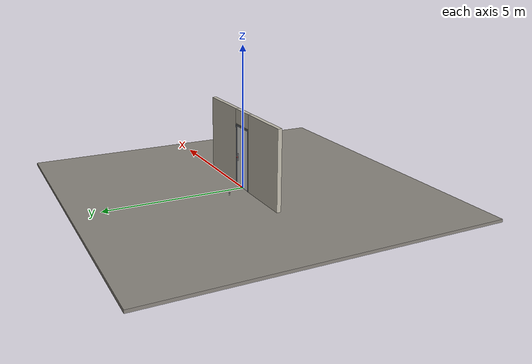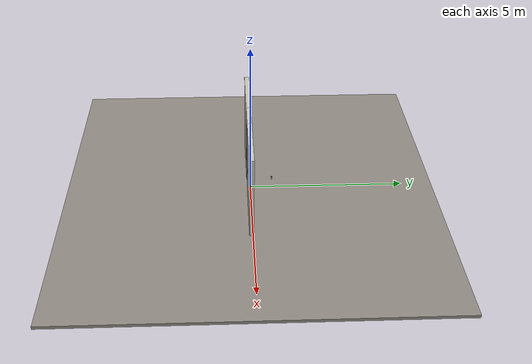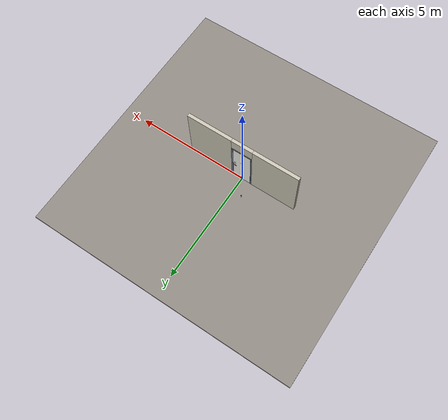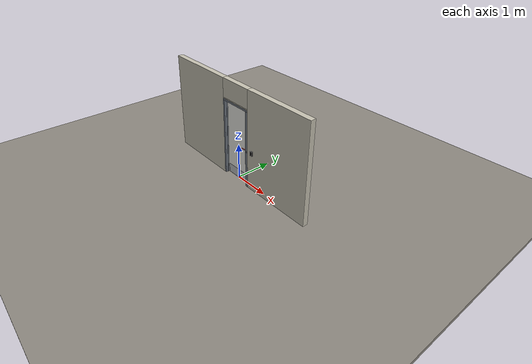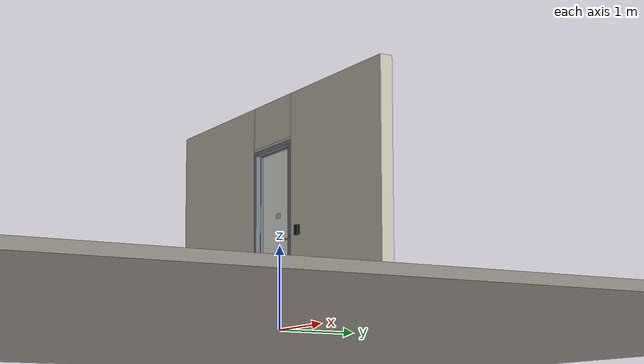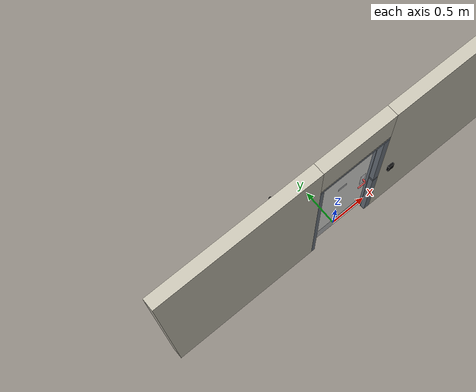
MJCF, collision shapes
<?xml version="1.0" ?>
<mujoco model="db0298_swing_single_full">
  <compiler angle="radian" meshdir="../../hardware" texturedir="../../textures" autolimits="true" inertiafromgeom="false"/>
  <option timestep="0.002" integrator="implicitfast" cone="elliptic" impratio="10" noslip_iterations="3">
    <flag multiccd="enable"/>
  </option>
  <size memory="16M"/>
  <default>
    <geom condim="4" solref="0.005 1" solimp="0.95 0.99 0.001"/>
    <joint solreflimit="0.005 1" solimplimit="0.95 0.99 0.001"/>
    <tendon solreflimit="0.005 1"/>
    <equality solref="0.002 1"/>
  </default>
  <visual>
    <headlight ambient="0.4 0.4 0.4" diffuse="0.7 0.7 0.7" specular="0.2 0.2 0.2"/>
    <quality shadowsize="4096"/>
    <map znear="0.01" zfar="60"/>
  </visual>
  <asset>
    <mesh name="card_reader_38c0bdb077" file="card_reader_38c0bdb077.obj"/>
    <mesh name="lever_56c65af20a" file="lever_56c65af20a.obj"/>
    <material name="mat_floor" rgba="0.55 0.53 0.5 1" specular="0.2" shininess="0.15" reflectance="0"/>
    <material name="mat_wall" rgba="0.78 0.76 0.7 1" specular="0.2" shininess="0.1" reflectance="0"/>
    <material name="mat_leaf" rgba="0.93 0.93 0.91 1" specular="0.2" shininess="0.37" reflectance="0"/>
    <material name="mat_hinge" rgba="0.65 0.66 0.68 1" specular="0.74" shininess="0.5" reflectance="0.36"/>
    <material name="mat_op_chrome" rgba="0.9 0.9 0.92 1" specular="0.8" shininess="0.9" reflectance="0.4"/>
    <material name="mat_trim" rgba="0.85 0.66 0.3 1" specular="0.8" shininess="0.75" reflectance="0.4"/>
    <material name="mat_reader" rgba="0.05 0.05 0.05 1" specular="0.38" shininess="0.3" reflectance="0.12"/>
    <material name="mat_bolt" rgba="0.85 0.66 0.3 1" specular="0.8" shininess="0.75" reflectance="0.4"/>
    <material name="mat_frame" rgba="0.45 0.48 0.52 1" specular="0.32" shininess="0.6" reflectance="0.08"/>
    <material name="mat_kick" rgba="0.75 0.76 0.77 1" specular="0.8" shininess="0.65" reflectance="0.4"/>
    <material name="mat_sign" rgba="0.75 0.76 0.77 1" specular="0.8" shininess="0.65" reflectance="0.4"/>
    <material name="mat_wallreader" rgba="0.05 0.05 0.05 1" specular="0.38" shininess="0.3" reflectance="0.12"/>
    <material name="mat_bumper_stop" rgba="0.08 0.08 0.08 1" specular="0.2" shininess="0.1" reflectance="0"/>
    <material name="mat_stop_base" rgba="0.9 0.9 0.92 1" specular="0.8" shininess="0.9" reflectance="0.4"/>
    <texture name="skybox" type="skybox" builtin="gradient" rgb1="0.6 0.7 0.85" rgb2="0.9 0.92 0.95" width="256" height="256"/>
  </asset>
  <worldbody>
    <light name="sun" pos="1.5 -2.5 4" dir="-0.3 0.5 -0.8" directional="true" diffuse="0.8 0.8 0.8" specular="0.3 0.3 0.3" castshadow="true"/>
    <light name="fill" pos="-1.5 2.5 3" dir="0.3 -0.5 -0.7" directional="true" diffuse="0.35 0.35 0.4" castshadow="false"/>
    <camera name="robot_view" pos="0 -2.681312 1.812087" xyaxes="1 0 0 0 0.26963 0.962964" fovy="52"/>
    <camera name="far_view" pos="0 2.594313 1.812087" xyaxes="-1 0 0 0 -0.26963 0.962964" fovy="52"/>
    <camera name="iso" pos="2.004737 -2.259262 2.234138" xyaxes="0.741536 0.670913 0 -0.242917 0.268487 0.932151" fovy="46"/>
    <camera name="detail_handle" pos="0.4195 -0.877 1.32" xyaxes="0.97561 0.219512 0 -0.070934 0.315262 0.94635" fovy="38"/>
    <geom name="floor" type="box" size="6 6 0.05" pos="0 0 -0.05" material="mat_floor" group="0" contype="1" conaffinity="1" friction="0.8 0.005 0.0001" density="2400"/>
    <geom name="wall_left" type="box" size="1.01975 0.0725 1.3735" pos="-1.48025 -0.0435 1.3735" material="mat_wall" group="0" contype="1" conaffinity="1" friction="0.6 0.005 0.0001" density="800"/>
    <geom name="wall_right" type="box" size="1.00475 0.0725 1.3735" pos="1.49525 -0.0435 1.3735" material="mat_wall" group="0" contype="1" conaffinity="1" friction="0.6 0.005 0.0001" density="800"/>
    <geom name="wall_header" type="box" size="0.4755 0.0725 0.26" pos="0.015 -0.0435 2.487" material="mat_wall" group="0" contype="1" conaffinity="1" friction="0.6 0.005 0.0001" density="800"/>
    <geom name="jamb_hinge" type="box" size="0.025 0.0725 1.0735" pos="-0.4355 -0.0435 1.0735" material="mat_frame" group="0" contype="1" conaffinity="1" friction="0.6 0.005 0.0001" density="300"/>
    <geom name="strike_1040_wall_n" type="box" size="0.04 0.054075 0.0167" pos="0.4505 -0.061925 1.04" material="mat_frame" group="0" contype="1" conaffinity="1" friction="0.6 0.005 0.0001" density="300"/>
    <geom name="strike_1040_wall_p" type="box" size="0.04 0.008 0.0167" pos="0.4505 0.01585 1.04" material="mat_frame" group="0" contype="1" conaffinity="1" friction="0.6 0.005 0.0001" density="300"/>
    <geom name="strike_1040_ramp" type="box" size="0.04 0.01649 0.0167" pos="0.453736 0.022234 1.04" quat="0.977148 0 0 -0.212558" material="mat_frame" group="0" contype="1" conaffinity="1" friction="0.12 0.005 0.0001" density="300"/>
    <geom name="strike_1040_back" type="box" size="0.03165 0.00785 0.0167" pos="0.45885 0 1.04" material="mat_frame" group="0" contype="1" conaffinity="1" friction="0.6 0.005 0.0001" density="300"/>
    <geom name="jamb_strike_0" type="box" size="0.04 0.0725 0.51165" pos="0.4505 -0.0435 0.51165" material="mat_frame" group="0" contype="1" conaffinity="1" friction="0.6 0.005 0.0001" density="300"/>
    <geom name="jamb_strike_1" type="box" size="0.04 0.0725 0.54515" pos="0.4505 -0.0435 1.60185" material="mat_frame" group="0" contype="1" conaffinity="1" friction="0.6 0.005 0.0001" density="300"/>
    <geom name="jamb_head" type="box" size="0.4755 0.0725 0.025" pos="0.015 -0.0435 2.172" material="mat_frame" group="0" contype="1" conaffinity="1" friction="0.6 0.005 0.0001" density="300"/>
    <geom name="head_stud" type="box" size="0.4755 0.0725 0.015" pos="0.015 -0.0435 2.212" material="mat_wall" group="0" contype="1" conaffinity="1" friction="0.6 0.005 0.0001" density="500"/>
    <geom name="stop_hinge" type="box" size="0.0055 0.016 1.0735" pos="-0.405 -0.0385 1.0735" material="mat_frame" group="0" contype="1" conaffinity="1" friction="0.6 0.005 0.0001" density="300"/>
    <geom name="stop_strike" type="box" size="0.0055 0.016 1.0735" pos="0.405 -0.0385 1.0735" material="mat_frame" group="0" contype="1" conaffinity="1" friction="0.6 0.005 0.0001" density="300"/>
    <geom name="stop_head" type="box" size="0.4105 0.016 0.0055" pos="0 -0.0385 2.1415" material="mat_frame" group="0" contype="1" conaffinity="1" friction="0.6 0.005 0.0001" density="300"/>
    <geom name="wall_reader" type="box" size="0.04 0.015 0.06" pos="0.6605 -0.131 1.1" material="mat_wallreader" group="0" contype="1" conaffinity="1" friction="0.6 0.005 0.0001" density="1000"/>
    <geom name="door_stop_base" type="cylinder" size="0.022 0.003" pos="-0.4235 0.72005 0.003" material="mat_stop_base" group="0" contype="1" conaffinity="1" friction="0.6 0.005 0.0001" density="7850"/>
    <geom name="door_stop_post" type="cylinder" size="0.012 0.0245" pos="-0.4235 0.72005 0.0305" material="mat_stop_base" group="0" contype="1" conaffinity="1" friction="0.6 0.005 0.0001" density="7850"/>
    <geom name="door_stop_bumper" type="cylinder" size="0.022 0.02" pos="-0.4235 0.72005 0.075" material="mat_bumper_stop" group="0" contype="1" conaffinity="1" friction="0.6 0.005 0.0001" density="1100"/>
    <site name="approach_point" pos="0 -1.5 0" quat="1 0 0 0" size="0.05" rgba="0.2 0.9 0.2 0.5" group="4"/>
    <site name="goal_point" pos="0 1.5 0" quat="1 0 0 0" size="0.05" rgba="0.2 0.9 0.2 0.5" group="4"/>
    <site name="door_plane_center" pos="0 0 1.0735" quat="1 0 0 0" size="0.02" rgba="0.2 0.9 0.2 0.5" group="4"/>
    <body name="leaf" pos="-0.4105 0 0">
      <inertial pos="0.392693 0.001169 1.039845" mass="55.814035" quat="0.502626 0.497179 -0.501554 0.498621" diaginertia="3.463752104 21.773481629 25.211983119"/>
      <joint name="leaf_hinge" type="hinge" axis="0 0 1" pos="0.003 0.029 0" limited="true" range="0 1.570796" damping="0.218374" frictionloss="2.290412" armature="0.02"/>
      <geom name="leaf_slab" type="box" size="0.4065 0.022 1.067" pos="0.4095 0 1.076" material="mat_leaf" group="0" contype="1" conaffinity="1" friction="0.4 0.005 0.0001" density="1"/>
      <geom name="hinge_continuous" type="cylinder" size="0.0136 1.057" pos="0.003 0.029 1.076" material="mat_hinge" group="1" contype="0" conaffinity="0" density="2700"/>
      <geom name="leaf_handle_escutcheon_n" type="box" size="0.0375 0.0015 0.13" pos="0.746 -0.0235 1.04" material="mat_op_chrome" group="1" contype="0" conaffinity="0" density="3000"/>
      <geom name="leaf_handle_escutcheon_p" type="box" size="0.0375 0.0015 0.13" pos="0.746 0.0235 1.04" material="mat_op_chrome" group="1" contype="0" conaffinity="0" density="3000"/>
      <geom name="leaf_handle_reader" type="mesh" mesh="card_reader_38c0bdb077" pos="0.746 0.022 1.2" quat="0 0 0.707107 0.707107" material="mat_reader" group="1" contype="0" conaffinity="0" density="2000"/>
      <geom name="leaf_latch_bolt_faceplate" type="box" size="0.0006 0.01235 0.0267" pos="0.8154 0 1.04" material="mat_bolt" group="1" contype="0" conaffinity="0" density="8500"/>
      <geom name="kick_plate_n" type="box" size="0.3765 0.0008 0.125" pos="0.4095 -0.0228 0.144" material="mat_kick" group="2" contype="0" conaffinity="0" density="7900"/>
      <geom name="sign_push" type="box" size="0.06 0.001 0.03" pos="0.4095 -0.023 1.359" material="mat_sign" group="2" contype="0" conaffinity="0" density="7900"/>
      <geom name="sign_pull" type="box" size="0.06 0.001 0.03" pos="0.4095 0.023 1.359" material="mat_sign" group="2" contype="0" conaffinity="0" density="7900"/>
      <site name="leaf_edge_mid" pos="0.816 0 1.067" quat="1 0 0 0" size="0.02" rgba="0.2 0.9 0.2 0.5" group="4"/>
      <body name="leaf_handle" pos="0.746 0 1.04">
        <inertial pos="-0.034904 0 0" mass="0.739068" quat="0.707107 0 0 -0.707107" diaginertia="0.001260094 0.003272501 0.004494637"/>
        <joint name="leaf_handle_hinge" type="hinge" axis="0 -1 0" limited="true" range="0 0.87" damping="0.231314" frictionloss="0.06" stiffness="1.1" springref="-0.454545" armature="0.01"/>
        <geom name="leaf_handle_spindle" type="cylinder" size="0.006 0.034" pos="0 0 0" quat="0.707107 -0.707107 0 0" material="mat_op_chrome" group="1" contype="0" conaffinity="0" density="7850"/>
        <geom name="leaf_handle_lever_n" type="mesh" mesh="lever_56c65af20a" pos="0 -0.022 0" quat="0.707107 0.707107 0 0" material="mat_op_chrome" group="1" contype="0" conaffinity="0" density="3000"/>
        <geom name="leaf_handle_lever_col_n" type="capsule" size="0.0095 0.0505" pos="-0.06 -0.077 0" quat="0.707107 0 -0.707107 0" material="mat_op_chrome" group="3" contype="1" conaffinity="1" rgba="0.8 0.3 0.3 0.25" friction="0.7 0.01 0.0001" density="3000"/>
        <geom name="leaf_handle_hub_col_n" type="cylinder" size="0.012 0.022" pos="0 -0.052 0" quat="0.707107 -0.707107 0 0" material="mat_op_chrome" group="3" contype="1" conaffinity="1" rgba="0.8 0.3 0.3 0.25" friction="0.6 0.005 0.0001" density="3000"/>
        <geom name="leaf_handle_lever_p" type="mesh" mesh="lever_56c65af20a" pos="0 0.022 0" quat="-0.707107 0.707107 0 0" material="mat_op_chrome" group="1" contype="0" conaffinity="0" density="3000"/>
        <geom name="leaf_handle_lever_col_p" type="capsule" size="0.0095 0.0505" pos="-0.06 0.077 0" quat="0.707107 0 -0.707107 0" material="mat_op_chrome" group="3" contype="1" conaffinity="1" rgba="0.8 0.3 0.3 0.25" friction="0.7 0.01 0.0001" density="3000"/>
        <geom name="leaf_handle_hub_col_p" type="cylinder" size="0.012 0.022" pos="0 0.052 0" quat="0.707107 -0.707107 0 0" material="mat_op_chrome" group="3" contype="1" conaffinity="1" rgba="0.8 0.3 0.3 0.25" friction="0.6 0.005 0.0001" density="3000"/>
        <site name="leaf_handle_grip_n" pos="-0.096 -0.077 0" quat="1 0 0 0" size="0.012" rgba="0.2 0.9 0.2 0.5" group="4"/>
        <site name="leaf_handle_grip_p" pos="-0.096 0.077 0" quat="1 0 0 0" size="0.012" rgba="0.2 0.9 0.2 0.5" group="4"/>
      </body>
      <body name="leaf_latch_bolt" pos="0.816 0 1.04">
        <inertial pos="-0.00865 0 0" mass="0.041419" quat="0.92388 -0.382683 0 0" diaginertia="0.000000798 0.000005598 0.000005598"/>
        <joint name="leaf_latch_bolt_slide" type="slide" axis="-1 0 0" limited="true" range="0 0.0127" damping="2" frictionloss="0.3" stiffness="300" springref="-0.008333" armature="0.1"/>
        <geom name="leaf_latch_bolt_capsule" type="capsule" size="0.00635 0.015" pos="-0.00865 0 0" quat="0.707107 0 0.707107 0" material="mat_bolt" group="0" contype="1" conaffinity="1" friction="0.2 0.005 0.0001" density="8500"/>
      </body>
    </body>
  </worldbody>
  <tendon>
    <fixed name="leaf_latch_bolt_coupling" limited="true" range="0 10">
      <joint joint="leaf_latch_bolt_slide" coef="1"/>
      <joint joint="leaf_handle_hinge" coef="-0.015679"/>
    </fixed>
  </tendon>
  <sensor>
    <jointpos name="leaf_hinge_pos" joint="leaf_hinge"/>
    <jointvel name="leaf_hinge_vel" joint="leaf_hinge"/>
    <jointpos name="leaf_handle_hinge_pos" joint="leaf_handle_hinge"/>
    <jointvel name="leaf_handle_hinge_vel" joint="leaf_handle_hinge"/>
    <jointpos name="leaf_latch_bolt_slide_pos" joint="leaf_latch_bolt_slide"/>
    <jointvel name="leaf_latch_bolt_slide_vel" joint="leaf_latch_bolt_slide"/>
  </sensor>
</mujoco>
